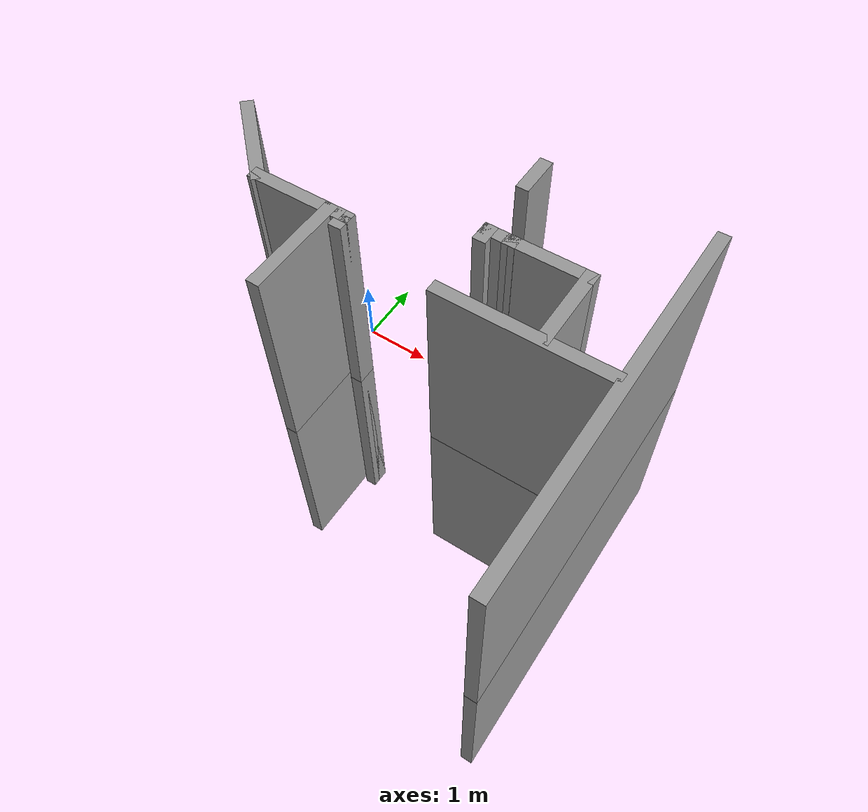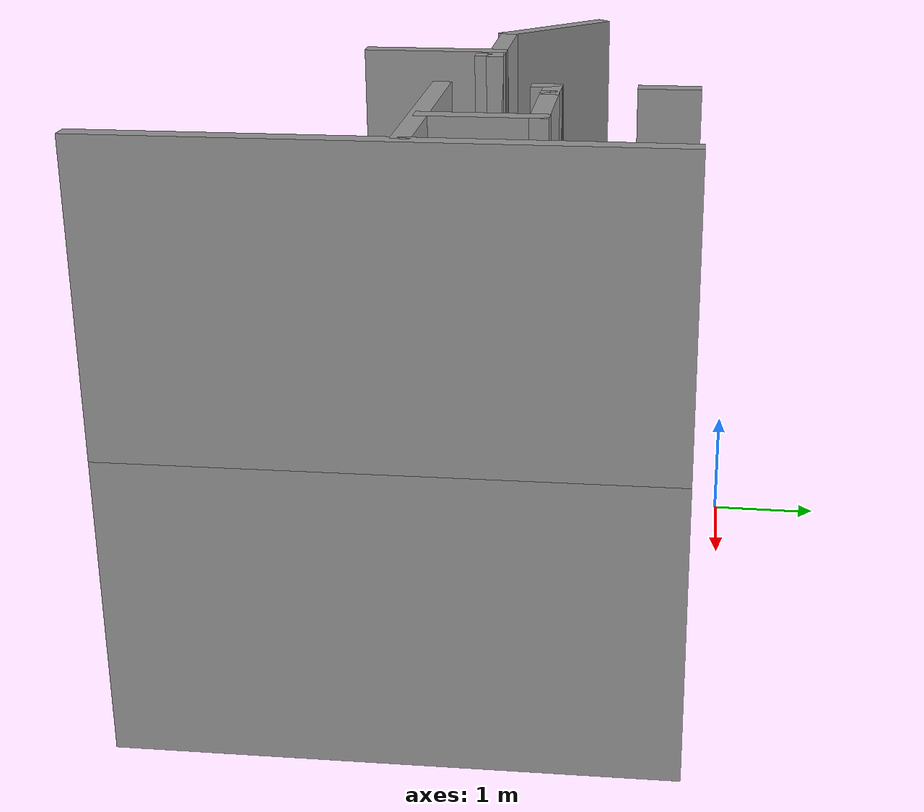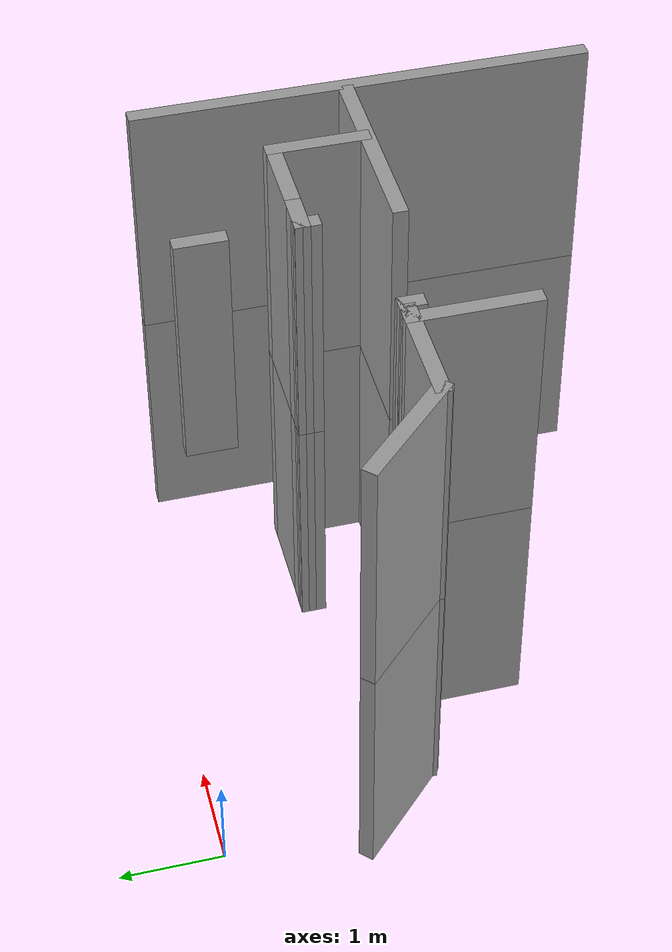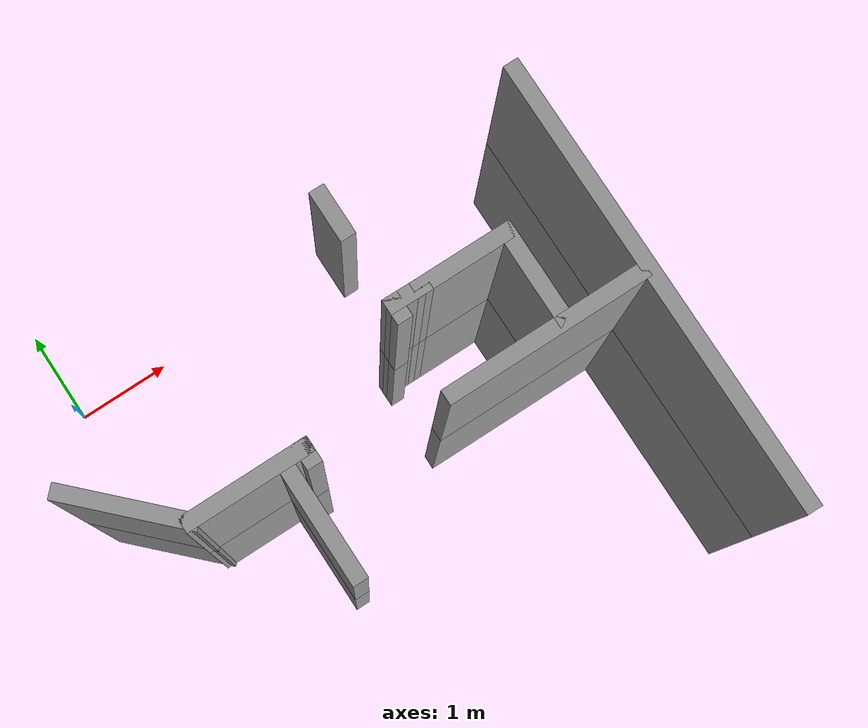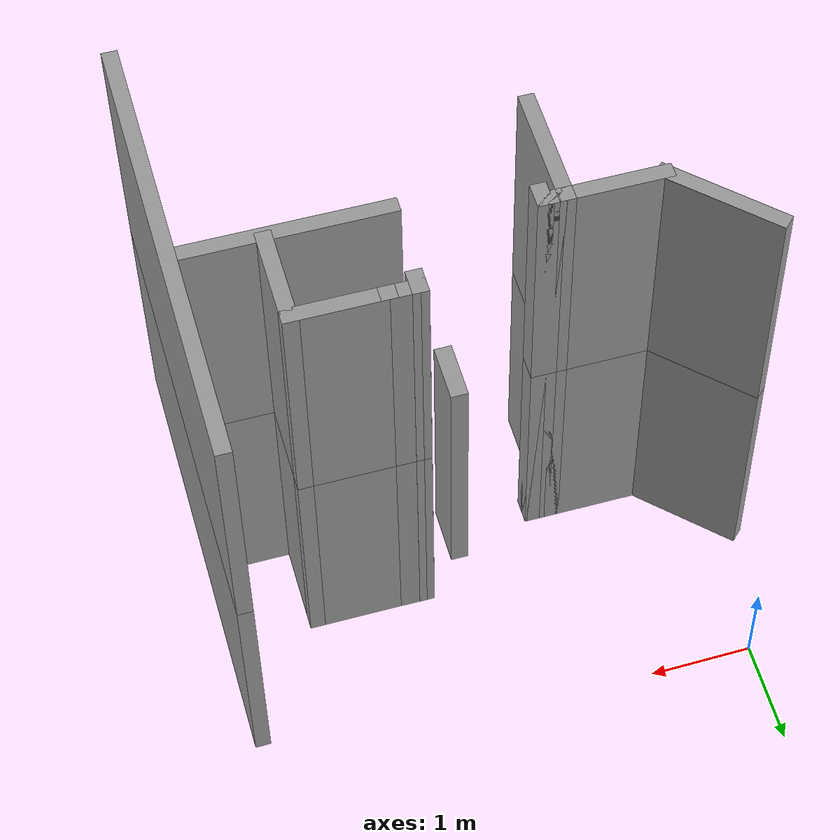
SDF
<sdf version="1.6">
 <model name="TwoStoreyBuilding">
  <link name="Wall_10">
   <pose>1.55282 -2.10282 0 0 -0 0</pose>
   <visual name="Wall_10_Visual">
    <pose>0 0 1.25 0 -0 0</pose>
    <geometry><box><size>0.25 0.15 2.5</size></box></geometry>
    <material>
     <script><uri>file://media/materials/scripts/gazebo.material</uri><name>Gazebo/Grey</name></script>
     <ambient>1 1 1 1</ambient>
    </material>
    <meta><layer>0</layer></meta>
   </visual>
   <collision name="Wall_10_Collision">
    <pose>0 0 1.25 0 -0 0</pose>
    <geometry><box><size>0.25 0.15 2.5</size></box></geometry>
    <surface>
     <friction>
      <ode><mu>1</mu><mu2>1</mu2><fdir1>0 0 0</fdir1><slip1>0</slip1><slip2>0</slip2></ode>
      <torsional>
       <coefficient>1</coefficient>
       <patch_radius>0</patch_radius>
       <surface_radius>0</surface_radius>
       <use_patch_radius>1</use_patch_radius>
       <ode><slip>0</slip></ode>
      </torsional>
     </friction>
     <bounce><restitution_coefficient>0</restitution_coefficient><threshold>1e+06</threshold></bounce>
     <contact>
      <collide_without_contact>0</collide_without_contact>
      <collide_without_contact_bitmask>1</collide_without_contact_bitmask>
      <collide_bitmask>1</collide_bitmask>
      <ode>
       <soft_cfm>0</soft_cfm>
       <soft_erp>0.2</soft_erp>
       <kp>1e+13</kp>
       <kd>1</kd>
       <max_vel>0.01</max_vel>
       <min_depth>0</min_depth>
      </ode>
      <bullet>
       <split_impulse>1</split_impulse>
       <split_impulse_penetration_threshold>-0.01</split_impulse_penetration_threshold>
       <soft_cfm>0</soft_cfm>
       <soft_erp>0.2</soft_erp>
       <kp>1e+13</kp>
       <kd>1</kd>
      </bullet>
     </contact>
    </surface>
   </collision>
  </link>
  <link name="Wall_107">
   <pose>4.825 -2.55 2.5 0 0 -1.5708</pose>
   <visual name="Wall_107_Visual">
    <pose>0 0 1.25 0 -0 0</pose>
    <geometry><box><size>4.5 0.15 2.5</size></box></geometry>
    <material>
     <script><uri>file://media/materials/scripts/gazebo.material</uri><name>Gazebo/Grey</name></script>
     <ambient>1 1 1 1</ambient>
    </material>
    <meta><layer>1</layer></meta>
   </visual>
   <collision name="Wall_107_Collision">
    <pose>0 0 1.25 0 -0 0</pose>
    <geometry><box><size>4.5 0.15 2.5</size></box></geometry>
    <surface>
     <friction>
      <ode><mu>1</mu><mu2>1</mu2><fdir1>0 0 0</fdir1><slip1>0</slip1><slip2>0</slip2></ode>
      <torsional>
       <coefficient>1</coefficient>
       <patch_radius>0</patch_radius>
       <surface_radius>0</surface_radius>
       <use_patch_radius>1</use_patch_radius>
       <ode><slip>0</slip></ode>
      </torsional>
     </friction>
     <bounce><restitution_coefficient>0</restitution_coefficient><threshold>1e+06</threshold></bounce>
     <contact>
      <collide_without_contact>0</collide_without_contact>
      <collide_without_contact_bitmask>1</collide_without_contact_bitmask>
      <collide_bitmask>1</collide_bitmask>
      <ode>
       <soft_cfm>0</soft_cfm>
       <soft_erp>0.2</soft_erp>
       <kp>1e+13</kp>
       <kd>1</kd>
       <max_vel>0.01</max_vel>
       <min_depth>0</min_depth>
      </ode>
      <bullet>
       <split_impulse>1</split_impulse>
       <split_impulse_penetration_threshold>-0.01</split_impulse_penetration_threshold>
       <soft_cfm>0</soft_cfm>
       <soft_erp>0.2</soft_erp>
       <kp>1e+13</kp>
       <kd>1</kd>
      </bullet>
     </contact>
    </surface>
   </collision>
  </link>
  <link name="Wall_11">
   <pose>1.60282 -2.15282 0 0 0 -1.5708</pose>
   <visual name="Wall_11_Visual">
    <pose>0 0 1.25 0 -0 0</pose>
    <geometry><box><size>0.25 0.15 2.5</size></box></geometry>
    <material>
     <script><uri>file://media/materials/scripts/gazebo.material</uri><name>Gazebo/Grey</name></script>
     <ambient>1 1 1 1</ambient>
    </material>
    <meta><layer>0</layer></meta>
   </visual>
   <collision name="Wall_11_Collision">
    <pose>0 0 1.25 0 -0 0</pose>
    <geometry><box><size>0.25 0.15 2.5</size></box></geometry>
    <surface>
     <friction>
      <ode><mu>1</mu><mu2>1</mu2><fdir1>0 0 0</fdir1><slip1>0</slip1><slip2>0</slip2></ode>
      <torsional>
       <coefficient>1</coefficient>
       <patch_radius>0</patch_radius>
       <surface_radius>0</surface_radius>
       <use_patch_radius>1</use_patch_radius>
       <ode><slip>0</slip></ode>
      </torsional>
     </friction>
     <bounce><restitution_coefficient>0</restitution_coefficient><threshold>1e+06</threshold></bounce>
     <contact>
      <collide_without_contact>0</collide_without_contact>
      <collide_without_contact_bitmask>1</collide_without_contact_bitmask>
      <collide_bitmask>1</collide_bitmask>
      <ode>
       <soft_cfm>0</soft_cfm>
       <soft_erp>0.2</soft_erp>
       <kp>1e+13</kp>
       <kd>1</kd>
       <max_vel>0.01</max_vel>
       <min_depth>0</min_depth>
      </ode>
      <bullet>
       <split_impulse>1</split_impulse>
       <split_impulse_penetration_threshold>-0.01</split_impulse_penetration_threshold>
       <soft_cfm>0</soft_cfm>
       <soft_erp>0.2</soft_erp>
       <kp>1e+13</kp>
       <kd>1</kd>
      </bullet>
     </contact>
    </surface>
   </collision>
  </link>
  <link name="Wall_116">
   <pose>3.80443 -2.38985 2.5 0 -0 0</pose>
   <visual name="Wall_116_Visual">
    <pose>0 0 1.25 0 -0 0</pose>
    <geometry><box><size>2 0.15 2.5</size></box></geometry>
    <material>
     <script><uri>file://media/materials/scripts/gazebo.material</uri><name>Gazebo/Grey</name></script>
     <ambient>1 1 1 1</ambient>
    </material>
    <meta><layer>1</layer></meta>
   </visual>
   <collision name="Wall_116_Collision">
    <pose>0 0 1.25 0 -0 0</pose>
    <geometry><box><size>2 0.15 2.5</size></box></geometry>
    <surface>
     <friction>
      <ode><mu>1</mu><mu2>1</mu2><fdir1>0 0 0</fdir1><slip1>0</slip1><slip2>0</slip2></ode>
      <torsional>
       <coefficient>1</coefficient>
       <patch_radius>0</patch_radius>
       <surface_radius>0</surface_radius>
       <use_patch_radius>1</use_patch_radius>
       <ode><slip>0</slip></ode>
      </torsional>
     </friction>
     <bounce><restitution_coefficient>0</restitution_coefficient><threshold>1e+06</threshold></bounce>
     <contact>
      <collide_without_contact>0</collide_without_contact>
      <collide_without_contact_bitmask>1</collide_without_contact_bitmask>
      <collide_bitmask>1</collide_bitmask>
      <ode>
       <soft_cfm>0</soft_cfm>
       <soft_erp>0.2</soft_erp>
       <kp>1e+13</kp>
       <kd>1</kd>
       <max_vel>0.01</max_vel>
       <min_depth>0</min_depth>
      </ode>
      <bullet>
       <split_impulse>1</split_impulse>
       <split_impulse_penetration_threshold>-0.01</split_impulse_penetration_threshold>
       <soft_cfm>0</soft_cfm>
       <soft_erp>0.2</soft_erp>
       <kp>1e+13</kp>
       <kd>1</kd>
      </bullet>
     </contact>
    </surface>
   </collision>
  </link>
  <link name="Wall_117">
   <pose>3.99596 -1.92349 2.5 0 -0 1.5708</pose>
   <visual name="Wall_117_Visual">
    <pose>0 0 1.25 0 -0 0</pose>
    <geometry><box><size>1 0.15 2.5</size></box></geometry>
    <material>
     <script><uri>file://media/materials/scripts/gazebo.material</uri><name>Gazebo/Grey</name></script>
     <ambient>1 1 1 1</ambient>
    </material>
    <meta><layer>1</layer></meta>
   </visual>
   <collision name="Wall_117_Collision">
    <pose>0 0 1.25 0 -0 0</pose>
    <geometry><box><size>1 0.15 2.5</size></box></geometry>
    <surface>
     <friction>
      <ode><mu>1</mu><mu2>1</mu2><fdir1>0 0 0</fdir1><slip1>0</slip1><slip2>0</slip2></ode>
      <torsional>
       <coefficient>1</coefficient>
       <patch_radius>0</patch_radius>
       <surface_radius>0</surface_radius>
       <use_patch_radius>1</use_patch_radius>
       <ode><slip>0</slip></ode>
      </torsional>
     </friction>
     <bounce><restitution_coefficient>0</restitution_coefficient><threshold>1e+06</threshold></bounce>
     <contact>
      <collide_without_contact>0</collide_without_contact>
      <collide_without_contact_bitmask>1</collide_without_contact_bitmask>
      <collide_bitmask>1</collide_bitmask>
      <ode>
       <soft_cfm>0</soft_cfm>
       <soft_erp>0.2</soft_erp>
       <kp>1e+13</kp>
       <kd>1</kd>
       <max_vel>0.01</max_vel>
       <min_depth>0</min_depth>
      </ode>
      <bullet>
       <split_impulse>1</split_impulse>
       <split_impulse_penetration_threshold>-0.01</split_impulse_penetration_threshold>
       <soft_cfm>0</soft_cfm>
       <soft_erp>0.2</soft_erp>
       <kp>1e+13</kp>
       <kd>1</kd>
      </bullet>
     </contact>
    </surface>
   </collision>
  </link>
  <link name="Wall_118">
   <pose>3.57096 -1.49849 2.5 0 -0 3.14159</pose>
   <visual name="Wall_118_Visual">
    <pose>0 0 1.25 0 -0 0</pose>
    <geometry><box><size>1 0.15 2.5</size></box></geometry>
    <material>
     <script><uri>file://media/materials/scripts/gazebo.material</uri><name>Gazebo/Grey</name></script>
     <ambient>1 1 1 1</ambient>
    </material>
    <meta><layer>1</layer></meta>
   </visual>
   <collision name="Wall_118_Collision">
    <pose>0 0 1.25 0 -0 0</pose>
    <geometry><box><size>1 0.15 2.5</size></box></geometry>
    <surface>
     <friction>
      <ode><mu>1</mu><mu2>1</mu2><fdir1>0 0 0</fdir1><slip1>0</slip1><slip2>0</slip2></ode>
      <torsional>
       <coefficient>1</coefficient>
       <patch_radius>0</patch_radius>
       <surface_radius>0</surface_radius>
       <use_patch_radius>1</use_patch_radius>
       <ode><slip>0</slip></ode>
      </torsional>
     </friction>
     <bounce><restitution_coefficient>0</restitution_coefficient><threshold>1e+06</threshold></bounce>
     <contact>
      <collide_without_contact>0</collide_without_contact>
      <collide_without_contact_bitmask>1</collide_without_contact_bitmask>
      <collide_bitmask>1</collide_bitmask>
      <ode>
       <soft_cfm>0</soft_cfm>
       <soft_erp>0.2</soft_erp>
       <kp>1e+13</kp>
       <kd>1</kd>
       <max_vel>0.01</max_vel>
       <min_depth>0</min_depth>
      </ode>
      <bullet>
       <split_impulse>1</split_impulse>
       <split_impulse_penetration_threshold>-0.01</split_impulse_penetration_threshold>
       <soft_cfm>0</soft_cfm>
       <soft_erp>0.2</soft_erp>
       <kp>1e+13</kp>
       <kd>1</kd>
      </bullet>
     </contact>
    </surface>
   </collision>
  </link>
  <link name="Wall_119">
   <pose>3.14596 -1.49849 2.5 0 -0 0</pose>
   <visual name="Wall_119_Visual">
    <pose>0 0 1.25 0 -0 0</pose>
    <geometry><box><size>0.15 0.15 2.5</size></box></geometry>
    <material>
     <script><uri>file://media/materials/scripts/gazebo.material</uri><name>Gazebo/Grey</name></script>
     <ambient>1 1 1 1</ambient>
    </material>
    <meta><layer>1</layer></meta>
   </visual>
   <collision name="Wall_119_Collision">
    <pose>0 0 1.25 0 -0 0</pose>
    <geometry><box><size>0.15 0.15 2.5</size></box></geometry>
    <surface>
     <friction>
      <ode><mu>1</mu><mu2>1</mu2><fdir1>0 0 0</fdir1><slip1>0</slip1><slip2>0</slip2></ode>
      <torsional>
       <coefficient>1</coefficient>
       <patch_radius>0</patch_radius>
       <surface_radius>0</surface_radius>
       <use_patch_radius>1</use_patch_radius>
       <ode><slip>0</slip></ode>
      </torsional>
     </friction>
     <bounce><restitution_coefficient>0</restitution_coefficient><threshold>1e+06</threshold></bounce>
     <contact>
      <collide_without_contact>0</collide_without_contact>
      <collide_without_contact_bitmask>1</collide_without_contact_bitmask>
      <collide_bitmask>1</collide_bitmask>
      <ode>
       <soft_cfm>0</soft_cfm>
       <soft_erp>0.2</soft_erp>
       <kp>1e+13</kp>
       <kd>1</kd>
       <max_vel>0.01</max_vel>
       <min_depth>0</min_depth>
      </ode>
      <bullet>
       <split_impulse>1</split_impulse>
       <split_impulse_penetration_threshold>-0.01</split_impulse_penetration_threshold>
       <soft_cfm>0</soft_cfm>
       <soft_erp>0.2</soft_erp>
       <kp>1e+13</kp>
       <kd>1</kd>
      </bullet>
     </contact>
    </surface>
   </collision>
  </link>
  <link name="Wall_120">
   <pose>3.01269 -1.4968 2.5 0 -0 3.12892</pose>
   <visual name="Wall_120_Visual">
    <pose>0 0 1.25 0 -0 0</pose>
    <geometry><box><size>0.416554 0.15 2.5</size></box></geometry>
    <material>
     <script><uri>file://media/materials/scripts/gazebo.material</uri><name>Gazebo/Grey</name></script>
     <ambient>1 1 1 1</ambient>
    </material>
    <meta><layer>1</layer></meta>
   </visual>
   <collision name="Wall_120_Collision">
    <pose>0 0 1.25 0 -0 0</pose>
    <geometry><box><size>0.416554 0.15 2.5</size></box></geometry>
    <surface>
     <friction>
      <ode><mu>1</mu><mu2>1</mu2><fdir1>0 0 0</fdir1><slip1>0</slip1><slip2>0</slip2></ode>
      <torsional>
       <coefficient>1</coefficient>
       <patch_radius>0</patch_radius>
       <surface_radius>0</surface_radius>
       <use_patch_radius>1</use_patch_radius>
       <ode><slip>0</slip></ode>
      </torsional>
     </friction>
     <bounce><restitution_coefficient>0</restitution_coefficient><threshold>1e+06</threshold></bounce>
     <contact>
      <collide_without_contact>0</collide_without_contact>
      <collide_without_contact_bitmask>1</collide_without_contact_bitmask>
      <collide_bitmask>1</collide_bitmask>
      <ode>
       <soft_cfm>0</soft_cfm>
       <soft_erp>0.2</soft_erp>
       <kp>1e+13</kp>
       <kd>1</kd>
       <max_vel>0.01</max_vel>
       <min_depth>0</min_depth>
      </ode>
      <bullet>
       <split_impulse>1</split_impulse>
       <split_impulse_penetration_threshold>-0.01</split_impulse_penetration_threshold>
       <soft_cfm>0</soft_cfm>
       <soft_erp>0.2</soft_erp>
       <kp>1e+13</kp>
       <kd>1</kd>
      </bullet>
     </contact>
    </surface>
   </collision>
  </link>
  <link name="Wall_121">
   <pose>2.87943 -1.54512 2.5 0 0 -1.5708</pose>
   <visual name="Wall_121_Visual">
    <pose>0 0 1.25 0 -0 0</pose>
    <geometry><box><size>0.25 0.15 2.5</size></box></geometry>
    <material>
     <script><uri>file://media/materials/scripts/gazebo.material</uri><name>Gazebo/Grey</name></script>
     <ambient>1 1 1 1</ambient>
    </material>
    <meta><layer>1</layer></meta>
   </visual>
   <collision name="Wall_121_Collision">
    <pose>0 0 1.25 0 -0 0</pose>
    <geometry><box><size>0.25 0.15 2.5</size></box></geometry>
    <surface>
     <friction>
      <ode><mu>1</mu><mu2>1</mu2><fdir1>0 0 0</fdir1><slip1>0</slip1><slip2>0</slip2></ode>
      <torsional>
       <coefficient>1</coefficient>
       <patch_radius>0</patch_radius>
       <surface_radius>0</surface_radius>
       <use_patch_radius>1</use_patch_radius>
       <ode><slip>0</slip></ode>
      </torsional>
     </friction>
     <bounce><restitution_coefficient>0</restitution_coefficient><threshold>1e+06</threshold></bounce>
     <contact>
      <collide_without_contact>0</collide_without_contact>
      <collide_without_contact_bitmask>1</collide_without_contact_bitmask>
      <collide_bitmask>1</collide_bitmask>
      <ode>
       <soft_cfm>0</soft_cfm>
       <soft_erp>0.2</soft_erp>
       <kp>1e+13</kp>
       <kd>1</kd>
       <max_vel>0.01</max_vel>
       <min_depth>0</min_depth>
      </ode>
      <bullet>
       <split_impulse>1</split_impulse>
       <split_impulse_penetration_threshold>-0.01</split_impulse_penetration_threshold>
       <soft_cfm>0</soft_cfm>
       <soft_erp>0.2</soft_erp>
       <kp>1e+13</kp>
       <kd>1</kd>
      </bullet>
     </contact>
    </surface>
   </collision>
  </link>
  <link name="Wall_122">
   <pose>2.86439 -0.57614 2.5 0 0 -1.5708</pose>
   <visual name="Wall_122_Visual">
    <pose>0 0 1.25 0 -0 0</pose>
    <geometry><box><size>0.5 0.15 2.5</size></box></geometry>
    <material>
     <script><uri>file://media/materials/scripts/gazebo.material</uri><name>Gazebo/Grey</name></script>
     <ambient>1 1 1 1</ambient>
    </material>
    <meta><layer>1</layer></meta>
   </visual>
   <collision name="Wall_122_Collision">
    <pose>0 0 1.25 0 -0 0</pose>
    <geometry><box><size>0.5 0.15 2.5</size></box></geometry>
    <surface>
     <friction>
      <ode><mu>1</mu><mu2>1</mu2><fdir1>0 0 0</fdir1><slip1>0</slip1><slip2>0</slip2></ode>
      <torsional>
       <coefficient>1</coefficient>
       <patch_radius>0</patch_radius>
       <surface_radius>0</surface_radius>
       <use_patch_radius>1</use_patch_radius>
       <ode><slip>0</slip></ode>
      </torsional>
     </friction>
     <bounce><restitution_coefficient>0</restitution_coefficient><threshold>1e+06</threshold></bounce>
     <contact>
      <collide_without_contact>0</collide_without_contact>
      <collide_without_contact_bitmask>1</collide_without_contact_bitmask>
      <collide_bitmask>1</collide_bitmask>
      <ode>
       <soft_cfm>0</soft_cfm>
       <soft_erp>0.2</soft_erp>
       <kp>1e+13</kp>
       <kd>1</kd>
       <max_vel>0.01</max_vel>
       <min_depth>0</min_depth>
      </ode>
      <bullet>
       <split_impulse>1</split_impulse>
       <split_impulse_penetration_threshold>-0.01</split_impulse_penetration_threshold>
       <soft_cfm>0</soft_cfm>
       <soft_erp>0.2</soft_erp>
       <kp>1e+13</kp>
       <kd>1</kd>
      </bullet>
     </contact>
    </surface>
   </collision>
  </link>
  <link name="Wall_13">
   <pose>1.05282 -2.10282 0 0 -0 3.14159</pose>
   <visual name="Wall_13_Visual">
    <pose>0 0 1.25 0 -0 0</pose>
    <geometry><box><size>1.25 0.15 2.5</size></box></geometry>
    <material>
     <script><uri>file://media/materials/scripts/gazebo.material</uri><name>Gazebo/Grey</name></script>
     <ambient>1 1 1 1</ambient>
    </material>
    <meta><layer>0</layer></meta>
   </visual>
   <collision name="Wall_13_Collision">
    <pose>0 0 1.25 0 -0 0</pose>
    <geometry><box><size>1.25 0.15 2.5</size></box></geometry>
    <surface>
     <friction>
      <ode><mu>1</mu><mu2>1</mu2><fdir1>0 0 0</fdir1><slip1>0</slip1><slip2>0</slip2></ode>
      <torsional>
       <coefficient>1</coefficient>
       <patch_radius>0</patch_radius>
       <surface_radius>0</surface_radius>
       <use_patch_radius>1</use_patch_radius>
       <ode><slip>0</slip></ode>
      </torsional>
     </friction>
     <bounce><restitution_coefficient>0</restitution_coefficient><threshold>1e+06</threshold></bounce>
     <contact>
      <collide_without_contact>0</collide_without_contact>
      <collide_without_contact_bitmask>1</collide_without_contact_bitmask>
      <collide_bitmask>1</collide_bitmask>
      <ode>
       <soft_cfm>0</soft_cfm>
       <soft_erp>0.2</soft_erp>
       <kp>1e+13</kp>
       <kd>1</kd>
       <max_vel>0.01</max_vel>
       <min_depth>0</min_depth>
      </ode>
      <bullet>
       <split_impulse>1</split_impulse>
       <split_impulse_penetration_threshold>-0.01</split_impulse_penetration_threshold>
       <soft_cfm>0</soft_cfm>
       <soft_erp>0.2</soft_erp>
       <kp>1e+13</kp>
       <kd>1</kd>
      </bullet>
     </contact>
    </surface>
   </collision>
  </link>
  <link name="Wall_14">
   <pose>0.113909 -1.71391 0 0 -0 2.35619</pose>
   <visual name="Wall_14_Visual">
    <pose>0 0 1.25 0 -0 0</pose>
    <geometry><box><size>1.25 0.15 2.5</size></box></geometry>
    <material>
     <script><uri>file://media/materials/scripts/gazebo.material</uri><name>Gazebo/Grey</name></script>
     <ambient>1 1 1 1</ambient>
    </material>
    <meta><layer>0</layer></meta>
   </visual>
   <collision name="Wall_14_Collision">
    <pose>0 0 1.25 0 -0 0</pose>
    <geometry><box><size>1.25 0.15 2.5</size></box></geometry>
    <surface>
     <friction>
      <ode><mu>1</mu><mu2>1</mu2><fdir1>0 0 0</fdir1><slip1>0</slip1><slip2>0</slip2></ode>
      <torsional>
       <coefficient>1</coefficient>
       <patch_radius>0</patch_radius>
       <surface_radius>0</surface_radius>
       <use_patch_radius>1</use_patch_radius>
       <ode><slip>0</slip></ode>
      </torsional>
     </friction>
     <bounce><restitution_coefficient>0</restitution_coefficient><threshold>1e+06</threshold></bounce>
     <contact>
      <collide_without_contact>0</collide_without_contact>
      <collide_without_contact_bitmask>1</collide_without_contact_bitmask>
      <collide_bitmask>1</collide_bitmask>
      <ode>
       <soft_cfm>0</soft_cfm>
       <soft_erp>0.2</soft_erp>
       <kp>1e+13</kp>
       <kd>1</kd>
       <max_vel>0.01</max_vel>
       <min_depth>0</min_depth>
      </ode>
      <bullet>
       <split_impulse>1</split_impulse>
       <split_impulse_penetration_threshold>-0.01</split_impulse_penetration_threshold>
       <soft_cfm>0</soft_cfm>
       <soft_erp>0.2</soft_erp>
       <kp>1e+13</kp>
       <kd>1</kd>
      </bullet>
     </contact>
    </surface>
   </collision>
  </link>
  <link name="Wall_31">
   <pose>4.825 -2.55 0 0 0 -1.5708</pose>
   <visual name="Wall_31_Visual">
    <pose>0 0 1.25 0 -0 0</pose>
    <geometry><box><size>4.5 0.15 2.5</size></box></geometry>
    <material>
     <script><uri>file://media/materials/scripts/gazebo.material</uri><name>Gazebo/Grey</name></script>
     <ambient>1 1 1 1</ambient>
    </material>
    <meta><layer>0</layer></meta>
   </visual>
   <collision name="Wall_31_Collision">
    <pose>0 0 1.25 0 -0 0</pose>
    <geometry><box><size>4.5 0.15 2.5</size></box></geometry>
    <surface>
     <friction>
      <ode><mu>1</mu><mu2>1</mu2><fdir1>0 0 0</fdir1><slip1>0</slip1><slip2>0</slip2></ode>
      <torsional>
       <coefficient>1</coefficient>
       <patch_radius>0</patch_radius>
       <surface_radius>0</surface_radius>
       <use_patch_radius>1</use_patch_radius>
       <ode><slip>0</slip></ode>
      </torsional>
     </friction>
     <bounce><restitution_coefficient>0</restitution_coefficient><threshold>1e+06</threshold></bounce>
     <contact>
      <collide_without_contact>0</collide_without_contact>
      <collide_without_contact_bitmask>1</collide_without_contact_bitmask>
      <collide_bitmask>1</collide_bitmask>
      <ode>
       <soft_cfm>0</soft_cfm>
       <soft_erp>0.2</soft_erp>
       <kp>1e+13</kp>
       <kd>1</kd>
       <max_vel>0.01</max_vel>
       <min_depth>0</min_depth>
      </ode>
      <bullet>
       <split_impulse>1</split_impulse>
       <split_impulse_penetration_threshold>-0.01</split_impulse_penetration_threshold>
       <soft_cfm>0</soft_cfm>
       <soft_erp>0.2</soft_erp>
       <kp>1e+13</kp>
       <kd>1</kd>
      </bullet>
     </contact>
    </surface>
   </collision>
  </link>
  <link name="Wall_46">
   <pose>3.80443 -2.38985 0 0 -0 0</pose>
   <visual name="Wall_46_Visual">
    <pose>0 0 1.25 0 -0 0</pose>
    <geometry><box><size>2 0.15 2.5</size></box></geometry>
    <material>
     <script><uri>file://media/materials/scripts/gazebo.material</uri><name>Gazebo/Grey</name></script>
     <ambient>1 1 1 1</ambient>
    </material>
    <meta><layer>0</layer></meta>
   </visual>
   <collision name="Wall_46_Collision">
    <pose>0 0 1.25 0 -0 0</pose>
    <geometry><box><size>2 0.15 2.5</size></box></geometry>
    <surface>
     <friction>
      <ode><mu>1</mu><mu2>1</mu2><fdir1>0 0 0</fdir1><slip1>0</slip1><slip2>0</slip2></ode>
      <torsional>
       <coefficient>1</coefficient>
       <patch_radius>0</patch_radius>
       <surface_radius>0</surface_radius>
       <use_patch_radius>1</use_patch_radius>
       <ode><slip>0</slip></ode>
      </torsional>
     </friction>
     <bounce><restitution_coefficient>0</restitution_coefficient><threshold>1e+06</threshold></bounce>
     <contact>
      <collide_without_contact>0</collide_without_contact>
      <collide_without_contact_bitmask>1</collide_without_contact_bitmask>
      <collide_bitmask>1</collide_bitmask>
      <ode>
       <soft_cfm>0</soft_cfm>
       <soft_erp>0.2</soft_erp>
       <kp>1e+13</kp>
       <kd>1</kd>
       <max_vel>0.01</max_vel>
       <min_depth>0</min_depth>
      </ode>
      <bullet>
       <split_impulse>1</split_impulse>
       <split_impulse_penetration_threshold>-0.01</split_impulse_penetration_threshold>
       <soft_cfm>0</soft_cfm>
       <soft_erp>0.2</soft_erp>
       <kp>1e+13</kp>
       <kd>1</kd>
      </bullet>
     </contact>
    </surface>
   </collision>
  </link>
  <link name="Wall_48">
   <pose>3.99596 -1.92349 0 0 -0 1.5708</pose>
   <visual name="Wall_48_Visual">
    <pose>0 0 1.25 0 -0 0</pose>
    <geometry><box><size>1 0.15 2.5</size></box></geometry>
    <material>
     <script><uri>file://media/materials/scripts/gazebo.material</uri><name>Gazebo/Grey</name></script>
     <ambient>1 1 1 1</ambient>
    </material>
    <meta><layer>0</layer></meta>
   </visual>
   <collision name="Wall_48_Collision">
    <pose>0 0 1.25 0 -0 0</pose>
    <geometry><box><size>1 0.15 2.5</size></box></geometry>
    <surface>
     <friction>
      <ode><mu>1</mu><mu2>1</mu2><fdir1>0 0 0</fdir1><slip1>0</slip1><slip2>0</slip2></ode>
      <torsional>
       <coefficient>1</coefficient>
       <patch_radius>0</patch_radius>
       <surface_radius>0</surface_radius>
       <use_patch_radius>1</use_patch_radius>
       <ode><slip>0</slip></ode>
      </torsional>
     </friction>
     <bounce><restitution_coefficient>0</restitution_coefficient><threshold>1e+06</threshold></bounce>
     <contact>
      <collide_without_contact>0</collide_without_contact>
      <collide_without_contact_bitmask>1</collide_without_contact_bitmask>
      <collide_bitmask>1</collide_bitmask>
      <ode>
       <soft_cfm>0</soft_cfm>
       <soft_erp>0.2</soft_erp>
       <kp>1e+13</kp>
       <kd>1</kd>
       <max_vel>0.01</max_vel>
       <min_depth>0</min_depth>
      </ode>
      <bullet>
       <split_impulse>1</split_impulse>
       <split_impulse_penetration_threshold>-0.01</split_impulse_penetration_threshold>
       <soft_cfm>0</soft_cfm>
       <soft_erp>0.2</soft_erp>
       <kp>1e+13</kp>
       <kd>1</kd>
      </bullet>
     </contact>
    </surface>
   </collision>
  </link>
  <link name="Wall_49">
   <pose>3.57096 -1.49849 0 0 -0 3.14159</pose>
   <visual name="Wall_49_Visual">
    <pose>0 0 1.25 0 -0 0</pose>
    <geometry><box><size>1 0.15 2.5</size></box></geometry>
    <material>
     <script><uri>file://media/materials/scripts/gazebo.material</uri><name>Gazebo/Grey</name></script>
     <ambient>1 1 1 1</ambient>
    </material>
    <meta><layer>0</layer></meta>
   </visual>
   <collision name="Wall_49_Collision">
    <pose>0 0 1.25 0 -0 0</pose>
    <geometry><box><size>1 0.15 2.5</size></box></geometry>
    <surface>
     <friction>
      <ode><mu>1</mu><mu2>1</mu2><fdir1>0 0 0</fdir1><slip1>0</slip1><slip2>0</slip2></ode>
      <torsional>
       <coefficient>1</coefficient>
       <patch_radius>0</patch_radius>
       <surface_radius>0</surface_radius>
       <use_patch_radius>1</use_patch_radius>
       <ode><slip>0</slip></ode>
      </torsional>
     </friction>
     <bounce><restitution_coefficient>0</restitution_coefficient><threshold>1e+06</threshold></bounce>
     <contact>
      <collide_without_contact>0</collide_without_contact>
      <collide_without_contact_bitmask>1</collide_without_contact_bitmask>
      <collide_bitmask>1</collide_bitmask>
      <ode>
       <soft_cfm>0</soft_cfm>
       <soft_erp>0.2</soft_erp>
       <kp>1e+13</kp>
       <kd>1</kd>
       <max_vel>0.01</max_vel>
       <min_depth>0</min_depth>
      </ode>
      <bullet>
       <split_impulse>1</split_impulse>
       <split_impulse_penetration_threshold>-0.01</split_impulse_penetration_threshold>
       <soft_cfm>0</soft_cfm>
       <soft_erp>0.2</soft_erp>
       <kp>1e+13</kp>
       <kd>1</kd>
      </bullet>
     </contact>
    </surface>
   </collision>
  </link>
  <link name="Wall_50">
   <pose>3.14596 -1.49849 0 0 -0 0</pose>
   <visual name="Wall_50_Visual">
    <pose>0 0 1.25 0 -0 0</pose>
    <geometry><box><size>0.15 0.15 2.5</size></box></geometry>
    <material>
     <script><uri>file://media/materials/scripts/gazebo.material</uri><name>Gazebo/Grey</name></script>
     <ambient>1 1 1 1</ambient>
    </material>
    <meta><layer>0</layer></meta>
   </visual>
   <collision name="Wall_50_Collision">
    <pose>0 0 1.25 0 -0 0</pose>
    <geometry><box><size>0.15 0.15 2.5</size></box></geometry>
    <surface>
     <friction>
      <ode><mu>1</mu><mu2>1</mu2><fdir1>0 0 0</fdir1><slip1>0</slip1><slip2>0</slip2></ode>
      <torsional>
       <coefficient>1</coefficient>
       <patch_radius>0</patch_radius>
       <surface_radius>0</surface_radius>
       <use_patch_radius>1</use_patch_radius>
       <ode><slip>0</slip></ode>
      </torsional>
     </friction>
     <bounce><restitution_coefficient>0</restitution_coefficient><threshold>1e+06</threshold></bounce>
     <contact>
      <collide_without_contact>0</collide_without_contact>
      <collide_without_contact_bitmask>1</collide_without_contact_bitmask>
      <collide_bitmask>1</collide_bitmask>
      <ode>
       <soft_cfm>0</soft_cfm>
       <soft_erp>0.2</soft_erp>
       <kp>1e+13</kp>
       <kd>1</kd>
       <max_vel>0.01</max_vel>
       <min_depth>0</min_depth>
      </ode>
      <bullet>
       <split_impulse>1</split_impulse>
       <split_impulse_penetration_threshold>-0.01</split_impulse_penetration_threshold>
       <soft_cfm>0</soft_cfm>
       <soft_erp>0.2</soft_erp>
       <kp>1e+13</kp>
       <kd>1</kd>
      </bullet>
     </contact>
    </surface>
   </collision>
  </link>
  <link name="Wall_51">
   <pose>3.01269 -1.4968 0 0 -0 3.12892</pose>
   <visual name="Wall_51_Visual">
    <pose>0 0 1.25 0 -0 0</pose>
    <geometry><box><size>0.416554 0.15 2.5</size></box></geometry>
    <material>
     <script><uri>file://media/materials/scripts/gazebo.material</uri><name>Gazebo/Grey</name></script>
     <ambient>1 1 1 1</ambient>
    </material>
    <meta><layer>0</layer></meta>
   </visual>
   <collision name="Wall_51_Collision">
    <pose>0 0 1.25 0 -0 0</pose>
    <geometry><box><size>0.416554 0.15 2.5</size></box></geometry>
    <surface>
     <friction>
      <ode><mu>1</mu><mu2>1</mu2><fdir1>0 0 0</fdir1><slip1>0</slip1><slip2>0</slip2></ode>
      <torsional>
       <coefficient>1</coefficient>
       <patch_radius>0</patch_radius>
       <surface_radius>0</surface_radius>
       <use_patch_radius>1</use_patch_radius>
       <ode><slip>0</slip></ode>
      </torsional>
     </friction>
     <bounce><restitution_coefficient>0</restitution_coefficient><threshold>1e+06</threshold></bounce>
     <contact>
      <collide_without_contact>0</collide_without_contact>
      <collide_without_contact_bitmask>1</collide_without_contact_bitmask>
      <collide_bitmask>1</collide_bitmask>
      <ode>
       <soft_cfm>0</soft_cfm>
       <soft_erp>0.2</soft_erp>
       <kp>1e+13</kp>
       <kd>1</kd>
       <max_vel>0.01</max_vel>
       <min_depth>0</min_depth>
      </ode>
      <bullet>
       <split_impulse>1</split_impulse>
       <split_impulse_penetration_threshold>-0.01</split_impulse_penetration_threshold>
       <soft_cfm>0</soft_cfm>
       <soft_erp>0.2</soft_erp>
       <kp>1e+13</kp>
       <kd>1</kd>
      </bullet>
     </contact>
    </surface>
   </collision>
  </link>
  <link name="Wall_52">
   <pose>2.87943 -1.54512 0 0 0 -1.5708</pose>
   <visual name="Wall_52_Visual">
    <pose>0 0 1.25 0 -0 0</pose>
    <geometry><box><size>0.25 0.15 2.5</size></box></geometry>
    <material>
     <script><uri>file://media/materials/scripts/gazebo.material</uri><name>Gazebo/Grey</name></script>
     <ambient>1 1 1 1</ambient>
    </material>
    <meta><layer>0</layer></meta>
   </visual>
   <collision name="Wall_52_Collision">
    <pose>0 0 1.25 0 -0 0</pose>
    <geometry><box><size>0.25 0.15 2.5</size></box></geometry>
    <surface>
     <friction>
      <ode><mu>1</mu><mu2>1</mu2><fdir1>0 0 0</fdir1><slip1>0</slip1><slip2>0</slip2></ode>
      <torsional>
       <coefficient>1</coefficient>
       <patch_radius>0</patch_radius>
       <surface_radius>0</surface_radius>
       <use_patch_radius>1</use_patch_radius>
       <ode><slip>0</slip></ode>
      </torsional>
     </friction>
     <bounce><restitution_coefficient>0</restitution_coefficient><threshold>1e+06</threshold></bounce>
     <contact>
      <collide_without_contact>0</collide_without_contact>
      <collide_without_contact_bitmask>1</collide_without_contact_bitmask>
      <collide_bitmask>1</collide_bitmask>
      <ode>
       <soft_cfm>0</soft_cfm>
       <soft_erp>0.2</soft_erp>
       <kp>1e+13</kp>
       <kd>1</kd>
       <max_vel>0.01</max_vel>
       <min_depth>0</min_depth>
      </ode>
      <bullet>
       <split_impulse>1</split_impulse>
       <split_impulse_penetration_threshold>-0.01</split_impulse_penetration_threshold>
       <soft_cfm>0</soft_cfm>
       <soft_erp>0.2</soft_erp>
       <kp>1e+13</kp>
       <kd>1</kd>
      </bullet>
     </contact>
    </surface>
   </collision>
  </link>
  <link name="Wall_8">
   <pose>1.40282 -2.65282 0 0 -0 1.5708</pose>
   <visual name="Wall_8_Visual">
    <pose>0 0 1.25 0 -0 0</pose>
    <geometry><box><size>1.25 0.15 2.5</size></box></geometry>
    <material>
     <script><uri>file://media/materials/scripts/gazebo.material</uri><name>Gazebo/Grey</name></script>
     <ambient>1 1 1 1</ambient>
    </material>
    <meta><layer>0</layer></meta>
   </visual>
   <collision name="Wall_8_Collision">
    <pose>0 0 1.25 0 -0 0</pose>
    <geometry><box><size>1.25 0.15 2.5</size></box></geometry>
    <surface>
     <friction>
      <ode><mu>1</mu><mu2>1</mu2><fdir1>0 0 0</fdir1><slip1>0</slip1><slip2>0</slip2></ode>
      <torsional>
       <coefficient>1</coefficient>
       <patch_radius>0</patch_radius>
       <surface_radius>0</surface_radius>
       <use_patch_radius>1</use_patch_radius>
       <ode><slip>0</slip></ode>
      </torsional>
     </friction>
     <bounce><restitution_coefficient>0</restitution_coefficient><threshold>1e+06</threshold></bounce>
     <contact>
      <collide_without_contact>0</collide_without_contact>
      <collide_without_contact_bitmask>1</collide_without_contact_bitmask>
      <collide_bitmask>1</collide_bitmask>
      <ode>
       <soft_cfm>0</soft_cfm>
       <soft_erp>0.2</soft_erp>
       <kp>1e+13</kp>
       <kd>1</kd>
       <max_vel>0.01</max_vel>
       <min_depth>0</min_depth>
      </ode>
      <bullet>
       <split_impulse>1</split_impulse>
       <split_impulse_penetration_threshold>-0.01</split_impulse_penetration_threshold>
       <soft_cfm>0</soft_cfm>
       <soft_erp>0.2</soft_erp>
       <kp>1e+13</kp>
       <kd>1</kd>
      </bullet>
     </contact>
    </surface>
   </collision>
  </link>
  <link name="Wall_88">
   <pose>1.40282 -2.65282 2.5 0 -0 1.5708</pose>
   <visual name="Wall_88_Visual">
    <pose>0 0 1.25 0 -0 0</pose>
    <geometry><box><size>1.25 0.15 2.5</size></box></geometry>
    <material>
     <script><uri>file://media/materials/scripts/gazebo.material</uri><name>Gazebo/Grey</name></script>
     <ambient>1 1 1 1</ambient>
    </material>
    <meta><layer>1</layer></meta>
   </visual>
   <collision name="Wall_88_Collision">
    <pose>0 0 1.25 0 -0 0</pose>
    <geometry><box><size>1.25 0.15 2.5</size></box></geometry>
    <surface>
     <friction>
      <ode><mu>1</mu><mu2>1</mu2><fdir1>0 0 0</fdir1><slip1>0</slip1><slip2>0</slip2></ode>
      <torsional>
       <coefficient>1</coefficient>
       <patch_radius>0</patch_radius>
       <surface_radius>0</surface_radius>
       <use_patch_radius>1</use_patch_radius>
       <ode><slip>0</slip></ode>
      </torsional>
     </friction>
     <bounce><restitution_coefficient>0</restitution_coefficient><threshold>1e+06</threshold></bounce>
     <contact>
      <collide_without_contact>0</collide_without_contact>
      <collide_without_contact_bitmask>1</collide_without_contact_bitmask>
      <collide_bitmask>1</collide_bitmask>
      <ode>
       <soft_cfm>0</soft_cfm>
       <soft_erp>0.2</soft_erp>
       <kp>1e+13</kp>
       <kd>1</kd>
       <max_vel>0.01</max_vel>
       <min_depth>0</min_depth>
      </ode>
      <bullet>
       <split_impulse>1</split_impulse>
       <split_impulse_penetration_threshold>-0.01</split_impulse_penetration_threshold>
       <soft_cfm>0</soft_cfm>
       <soft_erp>0.2</soft_erp>
       <kp>1e+13</kp>
       <kd>1</kd>
      </bullet>
     </contact>
    </surface>
   </collision>
  </link>
  <link name="Wall_89">
   <pose>1.45282 -2.10282 2.5 0 -0 0</pose>
   <visual name="Wall_89_Visual">
    <pose>0 0 1.25 0 -0 0</pose>
    <geometry><box><size>0.25 0.15 2.5</size></box></geometry>
    <material>
     <script><uri>file://media/materials/scripts/gazebo.material</uri><name>Gazebo/Grey</name></script>
     <ambient>1 1 1 1</ambient>
    </material>
    <meta><layer>1</layer></meta>
   </visual>
   <collision name="Wall_89_Collision">
    <pose>0 0 1.25 0 -0 0</pose>
    <geometry><box><size>0.25 0.15 2.5</size></box></geometry>
    <surface>
     <friction>
      <ode><mu>1</mu><mu2>1</mu2><fdir1>0 0 0</fdir1><slip1>0</slip1><slip2>0</slip2></ode>
      <torsional>
       <coefficient>1</coefficient>
       <patch_radius>0</patch_radius>
       <surface_radius>0</surface_radius>
       <use_patch_radius>1</use_patch_radius>
       <ode><slip>0</slip></ode>
      </torsional>
     </friction>
     <bounce><restitution_coefficient>0</restitution_coefficient><threshold>1e+06</threshold></bounce>
     <contact>
      <collide_without_contact>0</collide_without_contact>
      <collide_without_contact_bitmask>1</collide_without_contact_bitmask>
      <collide_bitmask>1</collide_bitmask>
      <ode>
       <soft_cfm>0</soft_cfm>
       <soft_erp>0.2</soft_erp>
       <kp>1e+13</kp>
       <kd>1</kd>
       <max_vel>0.01</max_vel>
       <min_depth>0</min_depth>
      </ode>
      <bullet>
       <split_impulse>1</split_impulse>
       <split_impulse_penetration_threshold>-0.01</split_impulse_penetration_threshold>
       <soft_cfm>0</soft_cfm>
       <soft_erp>0.2</soft_erp>
       <kp>1e+13</kp>
       <kd>1</kd>
      </bullet>
     </contact>
    </surface>
   </collision>
  </link>
  <link name="Wall_9">
   <pose>1.45282 -2.10282 0 0 -0 0</pose>
   <visual name="Wall_9_Visual">
    <pose>0 0 1.25 0 -0 0</pose>
    <geometry><box><size>0.25 0.15 2.5</size></box></geometry>
    <material>
     <script><uri>file://media/materials/scripts/gazebo.material</uri><name>Gazebo/Grey</name></script>
     <ambient>1 1 1 1</ambient>
    </material>
    <meta><layer>0</layer></meta>
   </visual>
   <collision name="Wall_9_Collision">
    <pose>0 0 1.25 0 -0 0</pose>
    <geometry><box><size>0.25 0.15 2.5</size></box></geometry>
    <surface>
     <friction>
      <ode><mu>1</mu><mu2>1</mu2><fdir1>0 0 0</fdir1><slip1>0</slip1><slip2>0</slip2></ode>
      <torsional>
       <coefficient>1</coefficient>
       <patch_radius>0</patch_radius>
       <surface_radius>0</surface_radius>
       <use_patch_radius>1</use_patch_radius>
       <ode><slip>0</slip></ode>
      </torsional>
     </friction>
     <bounce><restitution_coefficient>0</restitution_coefficient><threshold>1e+06</threshold></bounce>
     <contact>
      <collide_without_contact>0</collide_without_contact>
      <collide_without_contact_bitmask>1</collide_without_contact_bitmask>
      <collide_bitmask>1</collide_bitmask>
      <ode>
       <soft_cfm>0</soft_cfm>
       <soft_erp>0.2</soft_erp>
       <kp>1e+13</kp>
       <kd>1</kd>
       <max_vel>0.01</max_vel>
       <min_depth>0</min_depth>
      </ode>
      <bullet>
       <split_impulse>1</split_impulse>
       <split_impulse_penetration_threshold>-0.01</split_impulse_penetration_threshold>
       <soft_cfm>0</soft_cfm>
       <soft_erp>0.2</soft_erp>
       <kp>1e+13</kp>
       <kd>1</kd>
      </bullet>
     </contact>
    </surface>
   </collision>
  </link>
  <link name="Wall_90">
   <pose>1.55282 -2.10282 2.5 0 -0 0</pose>
   <visual name="Wall_90_Visual">
    <pose>0 0 1.25 0 -0 0</pose>
    <geometry><box><size>0.25 0.15 2.5</size></box></geometry>
    <material>
     <script><uri>file://media/materials/scripts/gazebo.material</uri><name>Gazebo/Grey</name></script>
     <ambient>1 1 1 1</ambient>
    </material>
    <meta><layer>1</layer></meta>
   </visual>
   <collision name="Wall_90_Collision">
    <pose>0 0 1.25 0 -0 0</pose>
    <geometry><box><size>0.25 0.15 2.5</size></box></geometry>
    <surface>
     <friction>
      <ode><mu>1</mu><mu2>1</mu2><fdir1>0 0 0</fdir1><slip1>0</slip1><slip2>0</slip2></ode>
      <torsional>
       <coefficient>1</coefficient>
       <patch_radius>0</patch_radius>
       <surface_radius>0</surface_radius>
       <use_patch_radius>1</use_patch_radius>
       <ode><slip>0</slip></ode>
      </torsional>
     </friction>
     <bounce><restitution_coefficient>0</restitution_coefficient><threshold>1e+06</threshold></bounce>
     <contact>
      <collide_without_contact>0</collide_without_contact>
      <collide_without_contact_bitmask>1</collide_without_contact_bitmask>
      <collide_bitmask>1</collide_bitmask>
      <ode>
       <soft_cfm>0</soft_cfm>
       <soft_erp>0.2</soft_erp>
       <kp>1e+13</kp>
       <kd>1</kd>
       <max_vel>0.01</max_vel>
       <min_depth>0</min_depth>
      </ode>
      <bullet>
       <split_impulse>1</split_impulse>
       <split_impulse_penetration_threshold>-0.01</split_impulse_penetration_threshold>
       <soft_cfm>0</soft_cfm>
       <soft_erp>0.2</soft_erp>
       <kp>1e+13</kp>
       <kd>1</kd>
      </bullet>
     </contact>
    </surface>
   </collision>
  </link>
  <link name="Wall_91">
   <pose>1.60282 -2.15282 2.5 0 0 -1.5708</pose>
   <visual name="Wall_91_Visual">
    <pose>0 0 1.25 0 -0 0</pose>
    <geometry><box><size>0.25 0.15 2.5</size></box></geometry>
    <material>
     <script><uri>file://media/materials/scripts/gazebo.material</uri><name>Gazebo/Grey</name></script>
     <ambient>1 1 1 1</ambient>
    </material>
    <meta><layer>1</layer></meta>
   </visual>
   <collision name="Wall_91_Collision">
    <pose>0 0 1.25 0 -0 0</pose>
    <geometry><box><size>0.25 0.15 2.5</size></box></geometry>
    <surface>
     <friction>
      <ode><mu>1</mu><mu2>1</mu2><fdir1>0 0 0</fdir1><slip1>0</slip1><slip2>0</slip2></ode>
      <torsional>
       <coefficient>1</coefficient>
       <patch_radius>0</patch_radius>
       <surface_radius>0</surface_radius>
       <use_patch_radius>1</use_patch_radius>
       <ode><slip>0</slip></ode>
      </torsional>
     </friction>
     <bounce><restitution_coefficient>0</restitution_coefficient><threshold>1e+06</threshold></bounce>
     <contact>
      <collide_without_contact>0</collide_without_contact>
      <collide_without_contact_bitmask>1</collide_without_contact_bitmask>
      <collide_bitmask>1</collide_bitmask>
      <ode>
       <soft_cfm>0</soft_cfm>
       <soft_erp>0.2</soft_erp>
       <kp>1e+13</kp>
       <kd>1</kd>
       <max_vel>0.01</max_vel>
       <min_depth>0</min_depth>
      </ode>
      <bullet>
       <split_impulse>1</split_impulse>
       <split_impulse_penetration_threshold>-0.01</split_impulse_penetration_threshold>
       <soft_cfm>0</soft_cfm>
       <soft_erp>0.2</soft_erp>
       <kp>1e+13</kp>
       <kd>1</kd>
      </bullet>
     </contact>
    </surface>
   </collision>
  </link>
  <link name="Wall_92">
   <pose>1.05282 -2.10282 2.5 0 -0 3.14159</pose>
   <visual name="Wall_92_Visual">
    <pose>0 0 1.25 0 -0 0</pose>
    <geometry><box><size>1.25 0.15 2.5</size></box></geometry>
    <material>
     <script><uri>file://media/materials/scripts/gazebo.material</uri><name>Gazebo/Grey</name></script>
     <ambient>1 1 1 1</ambient>
    </material>
    <meta><layer>1</layer></meta>
   </visual>
   <collision name="Wall_92_Collision">
    <pose>0 0 1.25 0 -0 0</pose>
    <geometry><box><size>1.25 0.15 2.5</size></box></geometry>
    <surface>
     <friction>
      <ode><mu>1</mu><mu2>1</mu2><fdir1>0 0 0</fdir1><slip1>0</slip1><slip2>0</slip2></ode>
      <torsional>
       <coefficient>1</coefficient>
       <patch_radius>0</patch_radius>
       <surface_radius>0</surface_radius>
       <use_patch_radius>1</use_patch_radius>
       <ode><slip>0</slip></ode>
      </torsional>
     </friction>
     <bounce><restitution_coefficient>0</restitution_coefficient><threshold>1e+06</threshold></bounce>
     <contact>
      <collide_without_contact>0</collide_without_contact>
      <collide_without_contact_bitmask>1</collide_without_contact_bitmask>
      <collide_bitmask>1</collide_bitmask>
      <ode>
       <soft_cfm>0</soft_cfm>
       <soft_erp>0.2</soft_erp>
       <kp>1e+13</kp>
       <kd>1</kd>
       <max_vel>0.01</max_vel>
       <min_depth>0</min_depth>
      </ode>
      <bullet>
       <split_impulse>1</split_impulse>
       <split_impulse_penetration_threshold>-0.01</split_impulse_penetration_threshold>
       <soft_cfm>0</soft_cfm>
       <soft_erp>0.2</soft_erp>
       <kp>1e+13</kp>
       <kd>1</kd>
      </bullet>
     </contact>
    </surface>
   </collision>
  </link>
  <link name="Wall_93">
   <pose>0.113909 -1.71391 2.5 0 -0 2.35619</pose>
   <visual name="Wall_93_Visual">
    <pose>0 0 1.25 0 -0 0</pose>
    <geometry><box><size>1.25 0.15 2.5</size></box></geometry>
    <material>
     <script><uri>file://media/materials/scripts/gazebo.material</uri><name>Gazebo/Grey</name></script>
     <ambient>1 1 1 1</ambient>
    </material>
    <meta><layer>1</layer></meta>
   </visual>
   <collision name="Wall_93_Collision">
    <pose>0 0 1.25 0 -0 0</pose>
    <geometry><box><size>1.25 0.15 2.5</size></box></geometry>
    <surface>
     <friction>
      <ode><mu>1</mu><mu2>1</mu2><fdir1>0 0 0</fdir1><slip1>0</slip1><slip2>0</slip2></ode>
      <torsional>
       <coefficient>1</coefficient>
       <patch_radius>0</patch_radius>
       <surface_radius>0</surface_radius>
       <use_patch_radius>1</use_patch_radius>
       <ode><slip>0</slip></ode>
      </torsional>
     </friction>
     <bounce><restitution_coefficient>0</restitution_coefficient><threshold>1e+06</threshold></bounce>
     <contact>
      <collide_without_contact>0</collide_without_contact>
      <collide_without_contact_bitmask>1</collide_without_contact_bitmask>
      <collide_bitmask>1</collide_bitmask>
      <ode>
       <soft_cfm>0</soft_cfm>
       <soft_erp>0.2</soft_erp>
       <kp>1e+13</kp>
       <kd>1</kd>
       <max_vel>0.01</max_vel>
       <min_depth>0</min_depth>
      </ode>
      <bullet>
       <split_impulse>1</split_impulse>
       <split_impulse_penetration_threshold>-0.01</split_impulse_penetration_threshold>
       <soft_cfm>0</soft_cfm>
       <soft_erp>0.2</soft_erp>
       <kp>1e+13</kp>
       <kd>1</kd>
      </bullet>
     </contact>
    </surface>
   </collision>
  </link>
  <static>1</static>
 </model>
</sdf>
